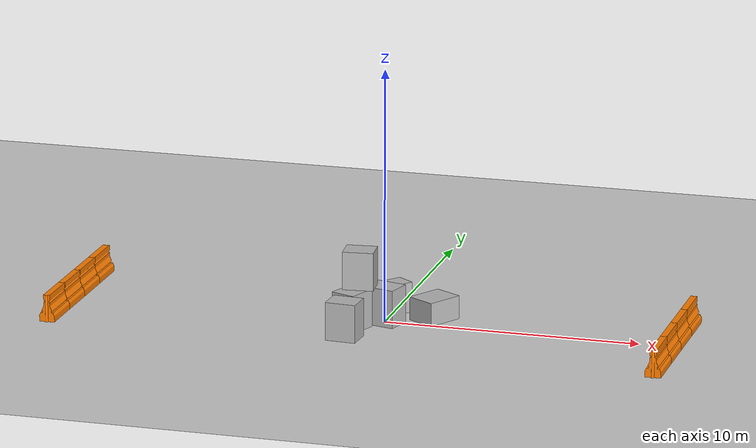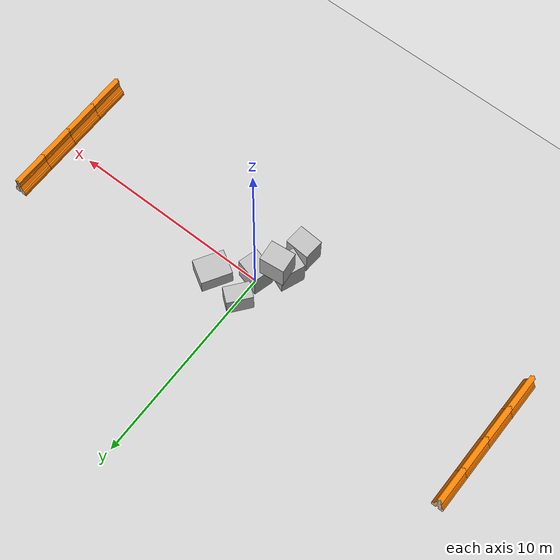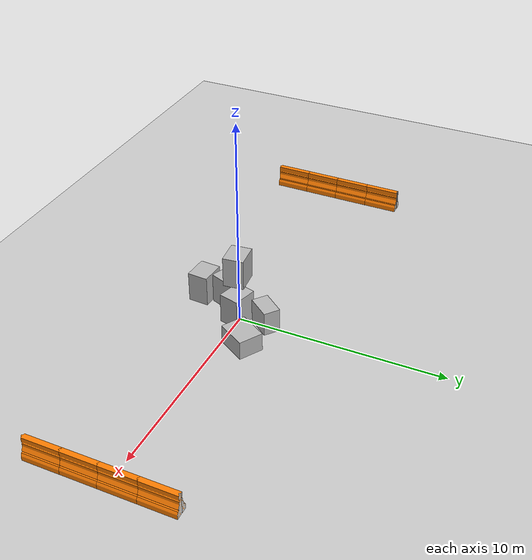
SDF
<sdf version="1.6">
 <world name="default">
  <light name="sun" type="directional">
   <pose>0 0 10 0 -0 0</pose>
   <diffuse>0.8 0.8 0.8 1</diffuse>
   <specular>0.2 0.2 0.2 1</specular>
   <attenuation>
    <range>1000</range>
    <constant>0.9</constant>
    <linear>0.01</linear>
    <quadratic>0.001</quadratic>
   </attenuation>
   <direction>-0.5 0.1 -0.9</direction>
  </light>
  <model name="ground_plane">
   <static>1</static>
   <link name="link">
    <collision name="collision">
     <geometry><plane><normal>0 0 1</normal><size>100 100</size></plane></geometry>
     <surface>
      <contact><collide_bitmask>65535</collide_bitmask></contact>
      <friction><ode><mu>100</mu><mu2>50</mu2></ode></friction>
     </surface>
    </collision>
    <visual name="visual">
     <cast_shadows>0</cast_shadows>
     <geometry><plane><normal>0 0 1</normal><size>100 100</size></plane></geometry>
     <material>
      <script><uri>file://media/materials/scripts/gazebo.material</uri><name>Gazebo/Grey</name></script>
     </material>
    </visual>
   </link>
  </model>
  <physics name="default_physics" default="0" type="ode">
   <ode>
    <solver>
     <type>quick</type>
     <iters>10</iters>
     <sor>1.3</sor>
     <use_dynamic_moi_rescaling>0</use_dynamic_moi_rescaling>
    </solver>
    <constraints>
     <cfm>0</cfm>
     <erp>0.2</erp>
     <contact_max_correcting_vel>100</contact_max_correcting_vel>
     <contact_surface_layer>0.001</contact_surface_layer>
    </constraints>
   </ode>
   <max_step_size>0.004</max_step_size>
   <real_time_factor>1</real_time_factor>
   <real_time_update_rate>250</real_time_update_rate>
  </physics>
  <gravity>0 0 -9.8066</gravity>
  <magnetic_field>6e-06 2.3e-05 -4.2e-05</magnetic_field>
  <atmosphere type="adiabatic"/>
  <scene><ambient>0.4 0.4 0.4 1</ambient><background>0.7 0.7 0.7 1</background><shadows>1</shadows></scene>
  <spherical_coordinates>
   <surface_model>EARTH_WGS84</surface_model>
   <latitude_deg>0</latitude_deg>
   <longitude_deg>0</longitude_deg>
   <elevation>0</elevation>
   <heading_deg>0</heading_deg>
  </spherical_coordinates>
  <model name="drc_practice_organge_jersey_barrier_1_clone_0">
   <static>1</static>
   <link name="link">
    <visual name="visual">
     <geometry>
      <mesh><uri>model://drc_practice_orange_jersey_barrier/meshes/jersey_barrier.dae</uri></mesh>
     </geometry>
    </visual>
    <collision name="collision">
     <geometry>
      <mesh><uri>model://drc_practice_orange_jersey_barrier/meshes/jersey_barrier.dae</uri></mesh>
     </geometry>
    </collision>
   </link>
   <pose>11.3832 2.3441 -0.007277 0 -0 0</pose>
  </model>
  <model name="drc_practice_organge_jersey_barrier_1_clone_1">
   <static>1</static>
   <link name="link">
    <visual name="visual">
     <geometry>
      <mesh><uri>model://drc_practice_orange_jersey_barrier/meshes/jersey_barrier.dae</uri></mesh>
     </geometry>
    </visual>
    <collision name="collision">
     <geometry>
      <mesh><uri>model://drc_practice_orange_jersey_barrier/meshes/jersey_barrier.dae</uri></mesh>
     </geometry>
    </collision>
   </link>
   <pose>11.3755 0.604007 -0.007277 0 -0 0</pose>
  </model>
  <model name="drc_practice_organge_jersey_barrier_1_clone_2">
   <static>1</static>
   <link name="link">
    <visual name="visual">
     <geometry>
      <mesh><uri>model://drc_practice_orange_jersey_barrier/meshes/jersey_barrier.dae</uri></mesh>
     </geometry>
    </visual>
    <collision name="collision">
     <geometry>
      <mesh><uri>model://drc_practice_orange_jersey_barrier/meshes/jersey_barrier.dae</uri></mesh>
     </geometry>
    </collision>
   </link>
   <pose>11.3672 -1.1249 -0.007277 0 -0 0</pose>
  </model>
  <model name="drc_practice_organge_jersey_barrier_1_clone_3">
   <static>1</static>
   <link name="link">
    <visual name="visual">
     <geometry>
      <mesh><uri>model://drc_practice_orange_jersey_barrier/meshes/jersey_barrier.dae</uri></mesh>
     </geometry>
    </visual>
    <collision name="collision">
     <geometry>
      <mesh><uri>model://drc_practice_orange_jersey_barrier/meshes/jersey_barrier.dae</uri></mesh>
     </geometry>
    </collision>
   </link>
   <pose>11.3619 -2.86431 -0.007277 0 -0 0</pose>
  </model>
  <model name="drc_practice_organge_jersey_barrier_1_clone_3_clone">
   <static>1</static>
   <link name="link">
    <visual name="visual">
     <geometry>
      <mesh><uri>model://drc_practice_orange_jersey_barrier/meshes/jersey_barrier.dae</uri></mesh>
     </geometry>
    </visual>
    <collision name="collision">
     <geometry>
      <mesh><uri>model://drc_practice_orange_jersey_barrier/meshes/jersey_barrier.dae</uri></mesh>
     </geometry>
    </collision>
   </link>
   <pose>-12.4631 2.55513 -0.007277 0 -0 0</pose>
  </model>
  <model name="drc_practice_organge_jersey_barrier_1_clone_3_clone_0">
   <static>1</static>
   <link name="link">
    <visual name="visual">
     <geometry>
      <mesh><uri>model://drc_practice_orange_jersey_barrier/meshes/jersey_barrier.dae</uri></mesh>
     </geometry>
    </visual>
    <collision name="collision">
     <geometry>
      <mesh><uri>model://drc_practice_orange_jersey_barrier/meshes/jersey_barrier.dae</uri></mesh>
     </geometry>
    </collision>
   </link>
   <pose>-12.4694 0.828783 -0.007277 0 -0 0</pose>
  </model>
  <model name="drc_practice_organge_jersey_barrier_1_clone_3_clone_1">
   <static>1</static>
   <link name="link">
    <visual name="visual">
     <geometry>
      <mesh><uri>model://drc_practice_orange_jersey_barrier/meshes/jersey_barrier.dae</uri></mesh>
     </geometry>
    </visual>
    <collision name="collision">
     <geometry>
      <mesh><uri>model://drc_practice_orange_jersey_barrier/meshes/jersey_barrier.dae</uri></mesh>
     </geometry>
    </collision>
   </link>
   <pose>-12.4809 -0.897501 -0.007277 0 -0 0</pose>
  </model>
  <model name="drc_practice_organge_jersey_barrier_1_clone_3_clone_2">
   <static>1</static>
   <link name="link">
    <visual name="visual">
     <geometry>
      <mesh><uri>model://drc_practice_orange_jersey_barrier/meshes/jersey_barrier.dae</uri></mesh>
     </geometry>
    </visual>
    <collision name="collision">
     <geometry>
      <mesh><uri>model://drc_practice_orange_jersey_barrier/meshes/jersey_barrier.dae</uri></mesh>
     </geometry>
    </collision>
   </link>
   <pose>-12.4928 -2.61817 -0.007277 0 -0 0</pose>
  </model>
  <model name="Big box">
   <pose>0.048118 -0.102704 0.749466 5.3e-05 -0.00088 -0.267111</pose>
   <static>0</static>
   <link name="link">
    <inertial>
     <mass>40</mass>
     <inertia><ixx>1</ixx><ixy>0</ixy><ixz>0</ixz><iyy>1</iyy><iyz>0</iyz><izz>1</izz></inertia>
    </inertial>
    <collision name="collision">
     <geometry><box><size>1.2 0.8 1.5</size></box></geometry>
     <surface><contact><ode><max_vel>0.1</max_vel><min_depth>0.001</min_depth></ode></contact></surface>
    </collision>
    <visual name="visual"><geometry><mesh><uri>model://big_box/meshes/big_box.dae</uri></mesh></geometry></visual>
   </link>
  </model>
  <model name="Big box_0">
   <pose>-1.01561 -1.05062 0.749459 8.4e-05 -0.000918 -1.94278</pose>
   <static>0</static>
   <link name="link">
    <inertial>
     <mass>40</mass>
     <inertia><ixx>1</ixx><ixy>0</ixy><ixz>0</ixz><iyy>1</iyy><iyz>0</iyz><izz>1</izz></inertia>
    </inertial>
    <collision name="collision">
     <geometry><box><size>1.2 0.8 1.5</size></box></geometry>
     <surface><contact><ode><max_vel>0.1</max_vel><min_depth>0.001</min_depth></ode></contact></surface>
    </collision>
    <visual name="visual"><geometry><mesh><uri>model://big_box/meshes/big_box.dae</uri></mesh></geometry></visual>
   </link>
  </model>
  <model name="big_box3">
   <pose>-0.057744 1.3005 0.599491 1.56881 1.56954 2.47127</pose>
   <static>0</static>
   <link name="link">
    <inertial>
     <mass>40</mass>
     <inertia><ixx>1</ixx><ixy>0</ixy><ixz>0</ixz><iyy>1</iyy><iyz>0</iyz><izz>1</izz></inertia>
    </inertial>
    <collision name="collision">
     <geometry><box><size>1.2 0.8 1.25</size></box></geometry>
     <surface><contact><ode><max_vel>0.1</max_vel><min_depth>0.001</min_depth></ode></contact></surface>
    </collision>
    <visual name="visual">
     <geometry><mesh><uri>model://big_box3/meshes/big_box.dae</uri></mesh></geometry>
    </visual>
   </link>
  </model>
  <model name="Big box_1">
   <pose>-0.945058 -2.33452 0.749497 -1.2e-05 -0.000868 3.07781</pose>
   <static>0</static>
   <link name="link">
    <inertial>
     <mass>40</mass>
     <inertia><ixx>1</ixx><ixy>0</ixy><ixz>0</ixz><iyy>1</iyy><iyz>0</iyz><izz>1</izz></inertia>
    </inertial>
    <collision name="collision">
     <geometry><box><size>1.2 0.8 1.5</size></box></geometry>
     <surface><contact><ode><max_vel>0.1</max_vel><min_depth>0.001</min_depth></ode></contact></surface>
    </collision>
    <visual name="visual"><geometry><mesh><uri>model://big_box/meshes/big_box.dae</uri></mesh></geometry></visual>
   </link>
  </model>
  <model name="Big box_1_clone">
   <pose>-0.855014 -0.503686 2.24898 0.000339 0.000178 -3.03681</pose>
   <static>0</static>
   <link name="link">
    <inertial>
     <mass>40</mass>
     <inertia><ixx>1</ixx><ixy>0</ixy><ixz>0</ixz><iyy>1</iyy><iyz>0</iyz><izz>1</izz></inertia>
    </inertial>
    <collision name="collision">
     <geometry><box><size>1.2 0.8 1.5</size></box></geometry>
     <surface><contact><ode><max_vel>0.1</max_vel><min_depth>0.001</min_depth></ode></contact></surface>
    </collision>
    <visual name="visual"><geometry><mesh><uri>model://big_box/meshes/big_box.dae</uri></mesh></geometry></visual>
   </link>
  </model>
  <model name="Big box_1_clone_0">
   <pose>1.70081 0.946266 0.39942 1.57014 -1.1e-05 -0.541531</pose>
   <static>0</static>
   <link name="link">
    <inertial>
     <mass>40</mass>
     <inertia><ixx>1</ixx><ixy>0</ixy><ixz>0</ixz><iyy>1</iyy><iyz>0</iyz><izz>1</izz></inertia>
    </inertial>
    <collision name="collision">
     <geometry><box><size>1.2 0.8 1.5</size></box></geometry>
     <surface><contact><ode><max_vel>0.1</max_vel><min_depth>0.001</min_depth></ode></contact></surface>
    </collision>
    <visual name="visual"><geometry><mesh><uri>model://big_box/meshes/big_box.dae</uri></mesh></geometry></visual>
   </link>
  </model>
 </world>
</sdf>
